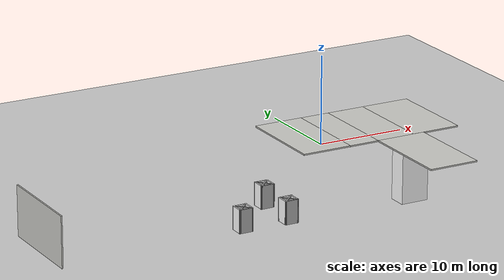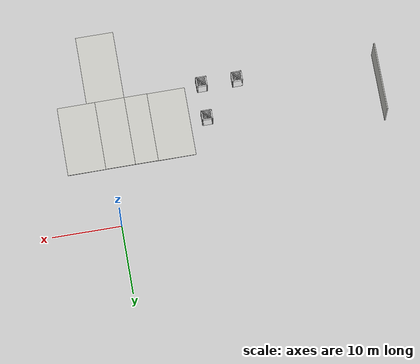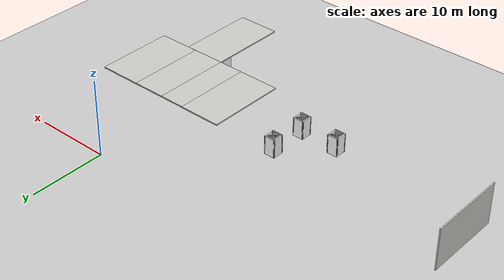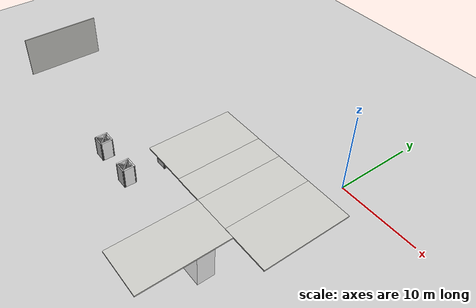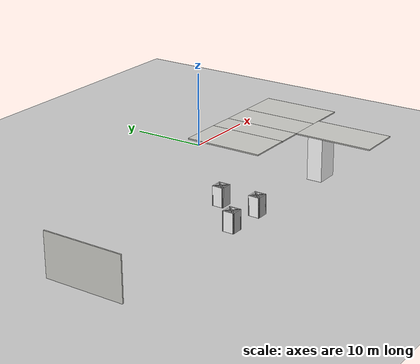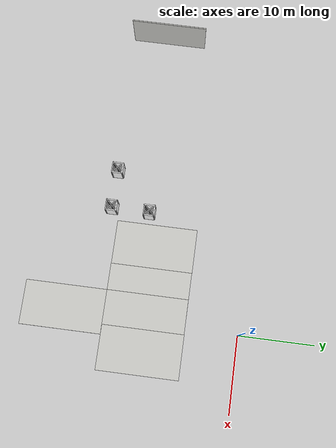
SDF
<sdf version="1.7">
 <world name="default">
  <model name="ground_plane">
   <static>1</static>
   <link name="link">
    <collision name="collision">
     <geometry><plane><normal>0 0 1</normal><size>100 100</size></plane></geometry>
     <surface>
      <contact><collide_bitmask>65535</collide_bitmask></contact>
      <friction><ode><mu>100</mu><mu2>50</mu2></ode></friction>
     </surface>
    </collision>
    <visual name="visual">
     <cast_shadows>0</cast_shadows>
     <geometry><plane><normal>0 0 1</normal><size>100 100</size></plane></geometry>
     <material>
      <script><uri>file://media/materials/scripts/gazebo.material</uri><name>Gazebo/Grey</name></script>
     </material>
    </visual>
   </link>
  </model>
  <model name="Untitled_0_clone_2">
   <link name="Wall_2">
    <pose>-0.3075 -1.8625 0 0 0 -1.5708</pose>
    <inertial>
     <mass>1</mass>
     <inertia><ixx>1</ixx><ixy>0</ixy><ixz>0</ixz><iyy>1</iyy><iyz>0</iyz><izz>1</izz></inertia>
    </inertial>
    <visual name="Wall_2_Visual">
     <pose>0 0 2.7 0 -0 0</pose>
     <geometry><box><size>10 0.15 5.4</size></box></geometry>
     <material>
      <script><uri>file://media/materials/scripts/gazebo.material</uri><name>Gazebo/CeilingTiled</name></script>
      <ambient>1 1 1 1</ambient>
      <shader type="pixel"><normal_map>__default__</normal_map></shader>
      <diffuse>1 1 1 1</diffuse>
      <specular>0 0 0 1</specular>
      <emissive>0 0 0 1</emissive>
     </material>
     <meta><layer>0</layer></meta>
    </visual>
    <collision name="Wall_2_Collision">
     <pose>0 0 2.7 0 -0 0</pose>
     <geometry><box><size>10 0.15 5.4</size></box></geometry>
     <surface>
      <friction>
       <ode><mu>1</mu><mu2>1</mu2><fdir1>0 0 0</fdir1><slip1>0</slip1><slip2>0</slip2></ode>
       <torsional>
        <coefficient>1</coefficient>
        <patch_radius>0</patch_radius>
        <surface_radius>0</surface_radius>
        <use_patch_radius>1</use_patch_radius>
        <ode><slip>0</slip></ode>
       </torsional>
      </friction>
      <bounce><restitution_coefficient>0</restitution_coefficient><threshold>1e+06</threshold></bounce>
      <contact>
       <collide_without_contact>0</collide_without_contact>
       <collide_without_contact_bitmask>1</collide_without_contact_bitmask>
       <collide_bitmask>1</collide_bitmask>
       <ode>
        <soft_cfm>0</soft_cfm>
        <soft_erp>0.2</soft_erp>
        <kp>1e+13</kp>
        <kd>1</kd>
        <max_vel>0.01</max_vel>
        <min_depth>0</min_depth>
       </ode>
       <bullet>
        <split_impulse>1</split_impulse>
        <split_impulse_penetration_threshold>-0.01</split_impulse_penetration_threshold>
        <soft_cfm>0</soft_cfm>
        <soft_erp>0.2</soft_erp>
        <kp>1e+13</kp>
        <kd>1</kd>
       </bullet>
      </contact>
     </surface>
    </collision>
   </link>
   <static>1</static>
   <pose>-39.5182 -12.2186 0 0 -0 0</pose>
  </model>
  <model name="Untitled_1_clone_3_clone_3">
   <link name="Wall_10">
    <pose>4.92197 -3.43197 0 0 -0 1.5708</pose>
    <inertial>
     <mass>1</mass>
     <inertia><ixx>1</ixx><ixy>0</ixy><ixz>0</ixz><iyy>1</iyy><iyz>0</iyz><izz>1</izz></inertia>
    </inertial>
    <visual name="Wall_10_Visual">
     <pose>0 0 1.25 0 -0 0</pose>
     <geometry><box><size>1.5 0.15 2.5</size></box></geometry>
     <material>
      <script><uri>file://media/materials/scripts/gazebo.material</uri><name>Gazebo/CoM</name></script>
      <ambient>1 1 1 1</ambient>
      <shader type="pixel"><normal_map>__default__</normal_map></shader>
      <diffuse>1 1 1 1</diffuse>
      <specular>0 0 0 1</specular>
      <emissive>0 0 0 1</emissive>
     </material>
     <meta><layer>0</layer></meta>
    </visual>
    <collision name="Wall_10_Collision">
     <pose>0 0 1.25 0 -0 0</pose>
     <geometry><box><size>1.5 0.15 2.5</size></box></geometry>
     <surface>
      <friction>
       <ode><mu>1</mu><mu2>1</mu2><fdir1>0 0 0</fdir1><slip1>0</slip1><slip2>0</slip2></ode>
       <torsional>
        <coefficient>1</coefficient>
        <patch_radius>0</patch_radius>
        <surface_radius>0</surface_radius>
        <use_patch_radius>1</use_patch_radius>
        <ode><slip>0</slip></ode>
       </torsional>
      </friction>
      <bounce><restitution_coefficient>0</restitution_coefficient><threshold>1e+06</threshold></bounce>
      <contact>
       <collide_without_contact>0</collide_without_contact>
       <collide_without_contact_bitmask>1</collide_without_contact_bitmask>
       <collide_bitmask>1</collide_bitmask>
       <ode>
        <soft_cfm>0</soft_cfm>
        <soft_erp>0.2</soft_erp>
        <kp>1e+13</kp>
        <kd>1</kd>
        <max_vel>0.01</max_vel>
        <min_depth>0</min_depth>
       </ode>
       <bullet>
        <split_impulse>1</split_impulse>
        <split_impulse_penetration_threshold>-0.01</split_impulse_penetration_threshold>
        <soft_cfm>0</soft_cfm>
        <soft_erp>0.2</soft_erp>
        <kp>1e+13</kp>
        <kd>1</kd>
       </bullet>
      </contact>
     </surface>
    </collision>
   </link>
   <link name="Wall_11">
    <pose>5.59697 -3.43197 0 0 0 -0.785398</pose>
    <visual name="Wall_11_Visual">
     <pose>0 0 1.25 0 -0 0</pose>
     <geometry><box><size>2.05919 0.15 2.5</size></box></geometry>
     <material>
      <script><uri>file://media/materials/scripts/gazebo.material</uri><name>Gazebo/Grey</name></script>
      <ambient>1 1 1 1</ambient>
      <shader type="pixel"/>
     </material>
     <meta><layer>0</layer></meta>
    </visual>
    <collision name="Wall_11_Collision">
     <pose>0 0 1.25 0 -0 0</pose>
     <geometry><box><size>2.05919 0.15 2.5</size></box></geometry>
     <surface>
      <friction>
       <ode><mu>1</mu><mu2>1</mu2><fdir1>0 0 0</fdir1><slip1>0</slip1><slip2>0</slip2></ode>
       <torsional>
        <coefficient>1</coefficient>
        <patch_radius>0</patch_radius>
        <surface_radius>0</surface_radius>
        <use_patch_radius>1</use_patch_radius>
        <ode><slip>0</slip></ode>
       </torsional>
      </friction>
      <bounce><restitution_coefficient>0</restitution_coefficient><threshold>1e+06</threshold></bounce>
      <contact>
       <collide_without_contact>0</collide_without_contact>
       <collide_without_contact_bitmask>1</collide_without_contact_bitmask>
       <collide_bitmask>1</collide_bitmask>
       <ode>
        <soft_cfm>0</soft_cfm>
        <soft_erp>0.2</soft_erp>
        <kp>1e+13</kp>
        <kd>1</kd>
        <max_vel>0.01</max_vel>
        <min_depth>0</min_depth>
       </ode>
       <bullet>
        <split_impulse>1</split_impulse>
        <split_impulse_penetration_threshold>-0.01</split_impulse_penetration_threshold>
        <soft_cfm>0</soft_cfm>
        <soft_erp>0.2</soft_erp>
        <kp>1e+13</kp>
        <kd>1</kd>
       </bullet>
      </contact>
     </surface>
    </collision>
   </link>
   <link name="Wall_13">
    <pose>5.59697 -3.43197 0 0 -0 0.785398</pose>
    <visual name="Wall_13_Visual">
     <pose>0 0 1.25 0 -0 0</pose>
     <geometry><box><size>2.05919 0.15 2.5</size></box></geometry>
     <material>
      <script><uri>file://media/materials/scripts/gazebo.material</uri><name>Gazebo/Grey</name></script>
      <ambient>1 1 1 1</ambient>
      <shader type="pixel"/>
     </material>
     <meta><layer>0</layer></meta>
    </visual>
    <collision name="Wall_13_Collision">
     <pose>0 0 1.25 0 -0 0</pose>
     <geometry><box><size>2.05919 0.15 2.5</size></box></geometry>
     <surface>
      <friction>
       <ode><mu>1</mu><mu2>1</mu2><fdir1>0 0 0</fdir1><slip1>0</slip1><slip2>0</slip2></ode>
       <torsional>
        <coefficient>1</coefficient>
        <patch_radius>0</patch_radius>
        <surface_radius>0</surface_radius>
        <use_patch_radius>1</use_patch_radius>
        <ode><slip>0</slip></ode>
       </torsional>
      </friction>
      <bounce><restitution_coefficient>0</restitution_coefficient><threshold>1e+06</threshold></bounce>
      <contact>
       <collide_without_contact>0</collide_without_contact>
       <collide_without_contact_bitmask>1</collide_without_contact_bitmask>
       <collide_bitmask>1</collide_bitmask>
       <ode>
        <soft_cfm>0</soft_cfm>
        <soft_erp>0.2</soft_erp>
        <kp>1e+13</kp>
        <kd>1</kd>
        <max_vel>0.01</max_vel>
        <min_depth>0</min_depth>
       </ode>
       <bullet>
        <split_impulse>1</split_impulse>
        <split_impulse_penetration_threshold>-0.01</split_impulse_penetration_threshold>
        <soft_cfm>0</soft_cfm>
        <soft_erp>0.2</soft_erp>
        <kp>1e+13</kp>
        <kd>1</kd>
       </bullet>
      </contact>
     </surface>
    </collision>
   </link>
   <link name="Wall_7">
    <pose>5.59697 -2.75697 0 0 -0 0</pose>
    <inertial>
     <mass>1</mass>
     <inertia><ixx>1</ixx><ixy>0</ixy><ixz>0</ixz><iyy>1</iyy><iyz>0</iyz><izz>1</izz></inertia>
    </inertial>
    <visual name="Wall_7_Visual">
     <pose>0 0 1.25 0 -0 0</pose>
     <geometry><box><size>1.5 0.15 2.5</size></box></geometry>
     <material>
      <script><uri>file://media/materials/scripts/gazebo.material</uri><name>Gazebo/CoM</name></script>
      <ambient>1 1 1 1</ambient>
      <shader type="pixel"><normal_map>__default__</normal_map></shader>
      <diffuse>1 1 1 1</diffuse>
      <specular>0 0 0 1</specular>
      <emissive>0 0 0 1</emissive>
     </material>
     <meta><layer>0</layer></meta>
    </visual>
    <collision name="Wall_7_Collision">
     <pose>0 0 1.25 0 -0 0</pose>
     <geometry><box><size>1.5 0.15 2.5</size></box></geometry>
     <surface>
      <friction>
       <ode><mu>1</mu><mu2>1</mu2><fdir1>0 0 0</fdir1><slip1>0</slip1><slip2>0</slip2></ode>
       <torsional>
        <coefficient>1</coefficient>
        <patch_radius>0</patch_radius>
        <surface_radius>0</surface_radius>
        <use_patch_radius>1</use_patch_radius>
        <ode><slip>0</slip></ode>
       </torsional>
      </friction>
      <bounce><restitution_coefficient>0</restitution_coefficient><threshold>1e+06</threshold></bounce>
      <contact>
       <collide_without_contact>0</collide_without_contact>
       <collide_without_contact_bitmask>1</collide_without_contact_bitmask>
       <collide_bitmask>1</collide_bitmask>
       <ode>
        <soft_cfm>0</soft_cfm>
        <soft_erp>0.2</soft_erp>
        <kp>1e+13</kp>
        <kd>1</kd>
        <max_vel>0.01</max_vel>
        <min_depth>0</min_depth>
       </ode>
       <bullet>
        <split_impulse>1</split_impulse>
        <split_impulse_penetration_threshold>-0.01</split_impulse_penetration_threshold>
        <soft_cfm>0</soft_cfm>
        <soft_erp>0.2</soft_erp>
        <kp>1e+13</kp>
        <kd>1</kd>
       </bullet>
      </contact>
     </surface>
    </collision>
   </link>
   <link name="Wall_8">
    <pose>6.27197 -3.43197 0 0 0 -1.5708</pose>
    <inertial>
     <mass>1</mass>
     <inertia><ixx>1</ixx><ixy>0</ixy><ixz>0</ixz><iyy>1</iyy><iyz>0</iyz><izz>1</izz></inertia>
    </inertial>
    <visual name="Wall_8_Visual">
     <pose>0 0 1.25 0 -0 0</pose>
     <geometry><box><size>1.5 0.15 2.5</size></box></geometry>
     <material>
      <script><uri>file://media/materials/scripts/gazebo.material</uri><name>Gazebo/CoM</name></script>
      <ambient>1 1 1 1</ambient>
      <shader type="pixel"><normal_map>__default__</normal_map></shader>
      <diffuse>1 1 1 1</diffuse>
      <specular>0 0 0 1</specular>
      <emissive>0 0 0 1</emissive>
     </material>
     <meta><layer>0</layer></meta>
    </visual>
    <collision name="Wall_8_Collision">
     <pose>0 0 1.25 0 -0 0</pose>
     <geometry><box><size>1.5 0.15 2.5</size></box></geometry>
     <surface>
      <friction>
       <ode><mu>1</mu><mu2>1</mu2><fdir1>0 0 0</fdir1><slip1>0</slip1><slip2>0</slip2></ode>
       <torsional>
        <coefficient>1</coefficient>
        <patch_radius>0</patch_radius>
        <surface_radius>0</surface_radius>
        <use_patch_radius>1</use_patch_radius>
        <ode><slip>0</slip></ode>
       </torsional>
      </friction>
      <bounce><restitution_coefficient>0</restitution_coefficient><threshold>1e+06</threshold></bounce>
      <contact>
       <collide_without_contact>0</collide_without_contact>
       <collide_without_contact_bitmask>1</collide_without_contact_bitmask>
       <collide_bitmask>1</collide_bitmask>
       <ode>
        <soft_cfm>0</soft_cfm>
        <soft_erp>0.2</soft_erp>
        <kp>1e+13</kp>
        <kd>1</kd>
        <max_vel>0.01</max_vel>
        <min_depth>0</min_depth>
       </ode>
       <bullet>
        <split_impulse>1</split_impulse>
        <split_impulse_penetration_threshold>-0.01</split_impulse_penetration_threshold>
        <soft_cfm>0</soft_cfm>
        <soft_erp>0.2</soft_erp>
        <kp>1e+13</kp>
        <kd>1</kd>
       </bullet>
      </contact>
     </surface>
    </collision>
   </link>
   <link name="Wall_9">
    <pose>5.59697 -4.10697 0 0 -0 3.14159</pose>
    <inertial>
     <mass>1</mass>
     <inertia><ixx>1</ixx><ixy>0</ixy><ixz>0</ixz><iyy>1</iyy><iyz>0</iyz><izz>1</izz></inertia>
    </inertial>
    <visual name="Wall_9_Visual">
     <pose>0 0 1.25 0 -0 0</pose>
     <geometry><box><size>1.5 0.15 2.5</size></box></geometry>
     <material>
      <script><uri>file://media/materials/scripts/gazebo.material</uri><name>Gazebo/CoM</name></script>
      <ambient>1 1 1 1</ambient>
      <shader type="pixel"><normal_map>__default__</normal_map></shader>
      <diffuse>0.7 0.7 0.7 1</diffuse>
      <specular>0.01 0.01 0.01 1</specular>
      <emissive>0 0 0 1</emissive>
     </material>
     <meta><layer>0</layer></meta>
    </visual>
    <collision name="Wall_9_Collision">
     <pose>0 0 1.25 0 -0 0</pose>
     <geometry><box><size>1.5 0.15 2.5</size></box></geometry>
     <surface>
      <friction>
       <ode><mu>1</mu><mu2>1</mu2><fdir1>0 0 0</fdir1><slip1>0</slip1><slip2>0</slip2></ode>
       <torsional>
        <coefficient>1</coefficient>
        <patch_radius>0</patch_radius>
        <surface_radius>0</surface_radius>
        <use_patch_radius>1</use_patch_radius>
        <ode><slip>0</slip></ode>
       </torsional>
      </friction>
      <bounce><restitution_coefficient>0</restitution_coefficient><threshold>1e+06</threshold></bounce>
      <contact>
       <collide_without_contact>0</collide_without_contact>
       <collide_without_contact_bitmask>1</collide_without_contact_bitmask>
       <collide_bitmask>1</collide_bitmask>
       <ode>
        <soft_cfm>0</soft_cfm>
        <soft_erp>0.2</soft_erp>
        <kp>1e+13</kp>
        <kd>1</kd>
        <max_vel>0.01</max_vel>
        <min_depth>0</min_depth>
       </ode>
       <bullet>
        <split_impulse>1</split_impulse>
        <split_impulse_penetration_threshold>-0.01</split_impulse_penetration_threshold>
        <soft_cfm>0</soft_cfm>
        <soft_erp>0.2</soft_erp>
        <kp>1e+13</kp>
        <kd>1</kd>
       </bullet>
      </contact>
     </surface>
    </collision>
   </link>
   <static>1</static>
   <pose>-20.2613 -15.1137 0 0 -0 0</pose>
  </model>
  <model name="Untitled_1_clone_3_clone_4">
   <link name="Wall_10">
    <pose>4.92197 -3.43197 0 0 -0 1.5708</pose>
    <inertial>
     <mass>1</mass>
     <inertia><ixx>1</ixx><ixy>0</ixy><ixz>0</ixz><iyy>1</iyy><iyz>0</iyz><izz>1</izz></inertia>
    </inertial>
    <visual name="Wall_10_Visual">
     <pose>0 0 1.25 0 -0 0</pose>
     <geometry><box><size>1.5 0.15 2.5</size></box></geometry>
     <material>
      <script><uri>file://media/materials/scripts/gazebo.material</uri><name>Gazebo/CoM</name></script>
      <ambient>1 1 1 1</ambient>
      <shader type="pixel"><normal_map>__default__</normal_map></shader>
      <diffuse>1 1 1 1</diffuse>
      <specular>0 0 0 1</specular>
      <emissive>0 0 0 1</emissive>
     </material>
     <meta><layer>0</layer></meta>
    </visual>
    <collision name="Wall_10_Collision">
     <pose>0 0 1.25 0 -0 0</pose>
     <geometry><box><size>1.5 0.15 2.5</size></box></geometry>
     <surface>
      <friction>
       <ode><mu>1</mu><mu2>1</mu2><fdir1>0 0 0</fdir1><slip1>0</slip1><slip2>0</slip2></ode>
       <torsional>
        <coefficient>1</coefficient>
        <patch_radius>0</patch_radius>
        <surface_radius>0</surface_radius>
        <use_patch_radius>1</use_patch_radius>
        <ode><slip>0</slip></ode>
       </torsional>
      </friction>
      <bounce><restitution_coefficient>0</restitution_coefficient><threshold>1e+06</threshold></bounce>
      <contact>
       <collide_without_contact>0</collide_without_contact>
       <collide_without_contact_bitmask>1</collide_without_contact_bitmask>
       <collide_bitmask>1</collide_bitmask>
       <ode>
        <soft_cfm>0</soft_cfm>
        <soft_erp>0.2</soft_erp>
        <kp>1e+13</kp>
        <kd>1</kd>
        <max_vel>0.01</max_vel>
        <min_depth>0</min_depth>
       </ode>
       <bullet>
        <split_impulse>1</split_impulse>
        <split_impulse_penetration_threshold>-0.01</split_impulse_penetration_threshold>
        <soft_cfm>0</soft_cfm>
        <soft_erp>0.2</soft_erp>
        <kp>1e+13</kp>
        <kd>1</kd>
       </bullet>
      </contact>
     </surface>
    </collision>
   </link>
   <link name="Wall_11">
    <pose>5.59697 -3.43197 0 0 0 -0.785398</pose>
    <visual name="Wall_11_Visual">
     <pose>0 0 1.25 0 -0 0</pose>
     <geometry><box><size>2.05919 0.15 2.5</size></box></geometry>
     <material>
      <script><uri>file://media/materials/scripts/gazebo.material</uri><name>Gazebo/Grey</name></script>
      <ambient>1 1 1 1</ambient>
      <shader type="pixel"/>
     </material>
     <meta><layer>0</layer></meta>
    </visual>
    <collision name="Wall_11_Collision">
     <pose>0 0 1.25 0 -0 0</pose>
     <geometry><box><size>2.05919 0.15 2.5</size></box></geometry>
     <surface>
      <friction>
       <ode><mu>1</mu><mu2>1</mu2><fdir1>0 0 0</fdir1><slip1>0</slip1><slip2>0</slip2></ode>
       <torsional>
        <coefficient>1</coefficient>
        <patch_radius>0</patch_radius>
        <surface_radius>0</surface_radius>
        <use_patch_radius>1</use_patch_radius>
        <ode><slip>0</slip></ode>
       </torsional>
      </friction>
      <bounce><restitution_coefficient>0</restitution_coefficient><threshold>1e+06</threshold></bounce>
      <contact>
       <collide_without_contact>0</collide_without_contact>
       <collide_without_contact_bitmask>1</collide_without_contact_bitmask>
       <collide_bitmask>1</collide_bitmask>
       <ode>
        <soft_cfm>0</soft_cfm>
        <soft_erp>0.2</soft_erp>
        <kp>1e+13</kp>
        <kd>1</kd>
        <max_vel>0.01</max_vel>
        <min_depth>0</min_depth>
       </ode>
       <bullet>
        <split_impulse>1</split_impulse>
        <split_impulse_penetration_threshold>-0.01</split_impulse_penetration_threshold>
        <soft_cfm>0</soft_cfm>
        <soft_erp>0.2</soft_erp>
        <kp>1e+13</kp>
        <kd>1</kd>
       </bullet>
      </contact>
     </surface>
    </collision>
   </link>
   <link name="Wall_13">
    <pose>5.59697 -3.43197 0 0 -0 0.785398</pose>
    <visual name="Wall_13_Visual">
     <pose>0 0 1.25 0 -0 0</pose>
     <geometry><box><size>2.05919 0.15 2.5</size></box></geometry>
     <material>
      <script><uri>file://media/materials/scripts/gazebo.material</uri><name>Gazebo/Grey</name></script>
      <ambient>1 1 1 1</ambient>
      <shader type="pixel"/>
     </material>
     <meta><layer>0</layer></meta>
    </visual>
    <collision name="Wall_13_Collision">
     <pose>0 0 1.25 0 -0 0</pose>
     <geometry><box><size>2.05919 0.15 2.5</size></box></geometry>
     <surface>
      <friction>
       <ode><mu>1</mu><mu2>1</mu2><fdir1>0 0 0</fdir1><slip1>0</slip1><slip2>0</slip2></ode>
       <torsional>
        <coefficient>1</coefficient>
        <patch_radius>0</patch_radius>
        <surface_radius>0</surface_radius>
        <use_patch_radius>1</use_patch_radius>
        <ode><slip>0</slip></ode>
       </torsional>
      </friction>
      <bounce><restitution_coefficient>0</restitution_coefficient><threshold>1e+06</threshold></bounce>
      <contact>
       <collide_without_contact>0</collide_without_contact>
       <collide_without_contact_bitmask>1</collide_without_contact_bitmask>
       <collide_bitmask>1</collide_bitmask>
       <ode>
        <soft_cfm>0</soft_cfm>
        <soft_erp>0.2</soft_erp>
        <kp>1e+13</kp>
        <kd>1</kd>
        <max_vel>0.01</max_vel>
        <min_depth>0</min_depth>
       </ode>
       <bullet>
        <split_impulse>1</split_impulse>
        <split_impulse_penetration_threshold>-0.01</split_impulse_penetration_threshold>
        <soft_cfm>0</soft_cfm>
        <soft_erp>0.2</soft_erp>
        <kp>1e+13</kp>
        <kd>1</kd>
       </bullet>
      </contact>
     </surface>
    </collision>
   </link>
   <link name="Wall_7">
    <pose>5.59697 -2.75697 0 0 -0 0</pose>
    <inertial>
     <mass>1</mass>
     <inertia><ixx>1</ixx><ixy>0</ixy><ixz>0</ixz><iyy>1</iyy><iyz>0</iyz><izz>1</izz></inertia>
    </inertial>
    <visual name="Wall_7_Visual">
     <pose>0 0 1.25 0 -0 0</pose>
     <geometry><box><size>1.5 0.15 2.5</size></box></geometry>
     <material>
      <script><uri>file://media/materials/scripts/gazebo.material</uri><name>Gazebo/CoM</name></script>
      <ambient>1 1 1 1</ambient>
      <shader type="pixel"><normal_map>__default__</normal_map></shader>
      <diffuse>1 1 1 1</diffuse>
      <specular>0 0 0 1</specular>
      <emissive>0 0 0 1</emissive>
     </material>
     <meta><layer>0</layer></meta>
    </visual>
    <collision name="Wall_7_Collision">
     <pose>0 0 1.25 0 -0 0</pose>
     <geometry><box><size>1.5 0.15 2.5</size></box></geometry>
     <surface>
      <friction>
       <ode><mu>1</mu><mu2>1</mu2><fdir1>0 0 0</fdir1><slip1>0</slip1><slip2>0</slip2></ode>
       <torsional>
        <coefficient>1</coefficient>
        <patch_radius>0</patch_radius>
        <surface_radius>0</surface_radius>
        <use_patch_radius>1</use_patch_radius>
        <ode><slip>0</slip></ode>
       </torsional>
      </friction>
      <bounce><restitution_coefficient>0</restitution_coefficient><threshold>1e+06</threshold></bounce>
      <contact>
       <collide_without_contact>0</collide_without_contact>
       <collide_without_contact_bitmask>1</collide_without_contact_bitmask>
       <collide_bitmask>1</collide_bitmask>
       <ode>
        <soft_cfm>0</soft_cfm>
        <soft_erp>0.2</soft_erp>
        <kp>1e+13</kp>
        <kd>1</kd>
        <max_vel>0.01</max_vel>
        <min_depth>0</min_depth>
       </ode>
       <bullet>
        <split_impulse>1</split_impulse>
        <split_impulse_penetration_threshold>-0.01</split_impulse_penetration_threshold>
        <soft_cfm>0</soft_cfm>
        <soft_erp>0.2</soft_erp>
        <kp>1e+13</kp>
        <kd>1</kd>
       </bullet>
      </contact>
     </surface>
    </collision>
   </link>
   <link name="Wall_8">
    <pose>6.27197 -3.43197 0 0 0 -1.5708</pose>
    <inertial>
     <mass>1</mass>
     <inertia><ixx>1</ixx><ixy>0</ixy><ixz>0</ixz><iyy>1</iyy><iyz>0</iyz><izz>1</izz></inertia>
    </inertial>
    <visual name="Wall_8_Visual">
     <pose>0 0 1.25 0 -0 0</pose>
     <geometry><box><size>1.5 0.15 2.5</size></box></geometry>
     <material>
      <script><uri>file://media/materials/scripts/gazebo.material</uri><name>Gazebo/CoM</name></script>
      <ambient>1 1 1 1</ambient>
      <shader type="pixel"><normal_map>__default__</normal_map></shader>
      <diffuse>1 1 1 1</diffuse>
      <specular>0 0 0 1</specular>
      <emissive>0 0 0 1</emissive>
     </material>
     <meta><layer>0</layer></meta>
    </visual>
    <collision name="Wall_8_Collision">
     <pose>0 0 1.25 0 -0 0</pose>
     <geometry><box><size>1.5 0.15 2.5</size></box></geometry>
     <surface>
      <friction>
       <ode><mu>1</mu><mu2>1</mu2><fdir1>0 0 0</fdir1><slip1>0</slip1><slip2>0</slip2></ode>
       <torsional>
        <coefficient>1</coefficient>
        <patch_radius>0</patch_radius>
        <surface_radius>0</surface_radius>
        <use_patch_radius>1</use_patch_radius>
        <ode><slip>0</slip></ode>
       </torsional>
      </friction>
      <bounce><restitution_coefficient>0</restitution_coefficient><threshold>1e+06</threshold></bounce>
      <contact>
       <collide_without_contact>0</collide_without_contact>
       <collide_without_contact_bitmask>1</collide_without_contact_bitmask>
       <collide_bitmask>1</collide_bitmask>
       <ode>
        <soft_cfm>0</soft_cfm>
        <soft_erp>0.2</soft_erp>
        <kp>1e+13</kp>
        <kd>1</kd>
        <max_vel>0.01</max_vel>
        <min_depth>0</min_depth>
       </ode>
       <bullet>
        <split_impulse>1</split_impulse>
        <split_impulse_penetration_threshold>-0.01</split_impulse_penetration_threshold>
        <soft_cfm>0</soft_cfm>
        <soft_erp>0.2</soft_erp>
        <kp>1e+13</kp>
        <kd>1</kd>
       </bullet>
      </contact>
     </surface>
    </collision>
   </link>
   <link name="Wall_9">
    <pose>5.59697 -4.10697 0 0 -0 3.14159</pose>
    <inertial>
     <mass>1</mass>
     <inertia><ixx>1</ixx><ixy>0</ixy><ixz>0</ixz><iyy>1</iyy><iyz>0</iyz><izz>1</izz></inertia>
    </inertial>
    <visual name="Wall_9_Visual">
     <pose>0 0 1.25 0 -0 0</pose>
     <geometry><box><size>1.5 0.15 2.5</size></box></geometry>
     <material>
      <script><uri>file://media/materials/scripts/gazebo.material</uri><name>Gazebo/CoM</name></script>
      <ambient>1 1 1 1</ambient>
      <shader type="pixel"><normal_map>__default__</normal_map></shader>
      <diffuse>0.7 0.7 0.7 1</diffuse>
      <specular>0.01 0.01 0.01 1</specular>
      <emissive>0 0 0 1</emissive>
     </material>
     <meta><layer>0</layer></meta>
    </visual>
    <collision name="Wall_9_Collision">
     <pose>0 0 1.25 0 -0 0</pose>
     <geometry><box><size>1.5 0.15 2.5</size></box></geometry>
     <surface>
      <friction>
       <ode><mu>1</mu><mu2>1</mu2><fdir1>0 0 0</fdir1><slip1>0</slip1><slip2>0</slip2></ode>
       <torsional>
        <coefficient>1</coefficient>
        <patch_radius>0</patch_radius>
        <surface_radius>0</surface_radius>
        <use_patch_radius>1</use_patch_radius>
        <ode><slip>0</slip></ode>
       </torsional>
      </friction>
      <bounce><restitution_coefficient>0</restitution_coefficient><threshold>1e+06</threshold></bounce>
      <contact>
       <collide_without_contact>0</collide_without_contact>
       <collide_without_contact_bitmask>1</collide_without_contact_bitmask>
       <collide_bitmask>1</collide_bitmask>
       <ode>
        <soft_cfm>0</soft_cfm>
        <soft_erp>0.2</soft_erp>
        <kp>1e+13</kp>
        <kd>1</kd>
        <max_vel>0.01</max_vel>
        <min_depth>0</min_depth>
       </ode>
       <bullet>
        <split_impulse>1</split_impulse>
        <split_impulse_penetration_threshold>-0.01</split_impulse_penetration_threshold>
        <soft_cfm>0</soft_cfm>
        <soft_erp>0.2</soft_erp>
        <kp>1e+13</kp>
        <kd>1</kd>
       </bullet>
      </contact>
     </surface>
    </collision>
   </link>
   <static>1</static>
   <pose>-25.4061 -15.0419 0 0 -0 0</pose>
  </model>
  <model name="Untitled_1_clone_3_clone_5">
   <link name="Wall_10">
    <pose>4.92197 -3.43197 0 0 -0 1.5708</pose>
    <inertial>
     <mass>1</mass>
     <inertia><ixx>1</ixx><ixy>0</ixy><ixz>0</ixz><iyy>1</iyy><iyz>0</iyz><izz>1</izz></inertia>
    </inertial>
    <visual name="Wall_10_Visual">
     <pose>0 0 1.25 0 -0 0</pose>
     <geometry><box><size>1.5 0.15 2.5</size></box></geometry>
     <material>
      <script><uri>file://media/materials/scripts/gazebo.material</uri><name>Gazebo/CoM</name></script>
      <ambient>1 1 1 1</ambient>
      <shader type="pixel"><normal_map>__default__</normal_map></shader>
      <diffuse>1 1 1 1</diffuse>
      <specular>0 0 0 1</specular>
      <emissive>0 0 0 1</emissive>
     </material>
     <meta><layer>0</layer></meta>
    </visual>
    <collision name="Wall_10_Collision">
     <pose>0 0 1.25 0 -0 0</pose>
     <geometry><box><size>1.5 0.15 2.5</size></box></geometry>
     <surface>
      <friction>
       <ode><mu>1</mu><mu2>1</mu2><fdir1>0 0 0</fdir1><slip1>0</slip1><slip2>0</slip2></ode>
       <torsional>
        <coefficient>1</coefficient>
        <patch_radius>0</patch_radius>
        <surface_radius>0</surface_radius>
        <use_patch_radius>1</use_patch_radius>
        <ode><slip>0</slip></ode>
       </torsional>
      </friction>
      <bounce><restitution_coefficient>0</restitution_coefficient><threshold>1e+06</threshold></bounce>
      <contact>
       <collide_without_contact>0</collide_without_contact>
       <collide_without_contact_bitmask>1</collide_without_contact_bitmask>
       <collide_bitmask>1</collide_bitmask>
       <ode>
        <soft_cfm>0</soft_cfm>
        <soft_erp>0.2</soft_erp>
        <kp>1e+13</kp>
        <kd>1</kd>
        <max_vel>0.01</max_vel>
        <min_depth>0</min_depth>
       </ode>
       <bullet>
        <split_impulse>1</split_impulse>
        <split_impulse_penetration_threshold>-0.01</split_impulse_penetration_threshold>
        <soft_cfm>0</soft_cfm>
        <soft_erp>0.2</soft_erp>
        <kp>1e+13</kp>
        <kd>1</kd>
       </bullet>
      </contact>
     </surface>
    </collision>
   </link>
   <link name="Wall_11">
    <pose>5.59697 -3.43197 0 0 0 -0.785398</pose>
    <visual name="Wall_11_Visual">
     <pose>0 0 1.25 0 -0 0</pose>
     <geometry><box><size>2.05919 0.15 2.5</size></box></geometry>
     <material>
      <script><uri>file://media/materials/scripts/gazebo.material</uri><name>Gazebo/Grey</name></script>
      <ambient>1 1 1 1</ambient>
      <shader type="pixel"/>
     </material>
     <meta><layer>0</layer></meta>
    </visual>
    <collision name="Wall_11_Collision">
     <pose>0 0 1.25 0 -0 0</pose>
     <geometry><box><size>2.05919 0.15 2.5</size></box></geometry>
     <surface>
      <friction>
       <ode><mu>1</mu><mu2>1</mu2><fdir1>0 0 0</fdir1><slip1>0</slip1><slip2>0</slip2></ode>
       <torsional>
        <coefficient>1</coefficient>
        <patch_radius>0</patch_radius>
        <surface_radius>0</surface_radius>
        <use_patch_radius>1</use_patch_radius>
        <ode><slip>0</slip></ode>
       </torsional>
      </friction>
      <bounce><restitution_coefficient>0</restitution_coefficient><threshold>1e+06</threshold></bounce>
      <contact>
       <collide_without_contact>0</collide_without_contact>
       <collide_without_contact_bitmask>1</collide_without_contact_bitmask>
       <collide_bitmask>1</collide_bitmask>
       <ode>
        <soft_cfm>0</soft_cfm>
        <soft_erp>0.2</soft_erp>
        <kp>1e+13</kp>
        <kd>1</kd>
        <max_vel>0.01</max_vel>
        <min_depth>0</min_depth>
       </ode>
       <bullet>
        <split_impulse>1</split_impulse>
        <split_impulse_penetration_threshold>-0.01</split_impulse_penetration_threshold>
        <soft_cfm>0</soft_cfm>
        <soft_erp>0.2</soft_erp>
        <kp>1e+13</kp>
        <kd>1</kd>
       </bullet>
      </contact>
     </surface>
    </collision>
   </link>
   <link name="Wall_13">
    <pose>5.59697 -3.43197 0 0 -0 0.785398</pose>
    <visual name="Wall_13_Visual">
     <pose>0 0 1.25 0 -0 0</pose>
     <geometry><box><size>2.05919 0.15 2.5</size></box></geometry>
     <material>
      <script><uri>file://media/materials/scripts/gazebo.material</uri><name>Gazebo/Grey</name></script>
      <ambient>1 1 1 1</ambient>
      <shader type="pixel"/>
     </material>
     <meta><layer>0</layer></meta>
    </visual>
    <collision name="Wall_13_Collision">
     <pose>0 0 1.25 0 -0 0</pose>
     <geometry><box><size>2.05919 0.15 2.5</size></box></geometry>
     <surface>
      <friction>
       <ode><mu>1</mu><mu2>1</mu2><fdir1>0 0 0</fdir1><slip1>0</slip1><slip2>0</slip2></ode>
       <torsional>
        <coefficient>1</coefficient>
        <patch_radius>0</patch_radius>
        <surface_radius>0</surface_radius>
        <use_patch_radius>1</use_patch_radius>
        <ode><slip>0</slip></ode>
       </torsional>
      </friction>
      <bounce><restitution_coefficient>0</restitution_coefficient><threshold>1e+06</threshold></bounce>
      <contact>
       <collide_without_contact>0</collide_without_contact>
       <collide_without_contact_bitmask>1</collide_without_contact_bitmask>
       <collide_bitmask>1</collide_bitmask>
       <ode>
        <soft_cfm>0</soft_cfm>
        <soft_erp>0.2</soft_erp>
        <kp>1e+13</kp>
        <kd>1</kd>
        <max_vel>0.01</max_vel>
        <min_depth>0</min_depth>
       </ode>
       <bullet>
        <split_impulse>1</split_impulse>
        <split_impulse_penetration_threshold>-0.01</split_impulse_penetration_threshold>
        <soft_cfm>0</soft_cfm>
        <soft_erp>0.2</soft_erp>
        <kp>1e+13</kp>
        <kd>1</kd>
       </bullet>
      </contact>
     </surface>
    </collision>
   </link>
   <link name="Wall_7">
    <pose>5.59697 -2.75697 0 0 -0 0</pose>
    <inertial>
     <mass>1</mass>
     <inertia><ixx>1</ixx><ixy>0</ixy><ixz>0</ixz><iyy>1</iyy><iyz>0</iyz><izz>1</izz></inertia>
    </inertial>
    <visual name="Wall_7_Visual">
     <pose>0 0 1.25 0 -0 0</pose>
     <geometry><box><size>1.5 0.15 2.5</size></box></geometry>
     <material>
      <script><uri>file://media/materials/scripts/gazebo.material</uri><name>Gazebo/CoM</name></script>
      <ambient>1 1 1 1</ambient>
      <shader type="pixel"><normal_map>__default__</normal_map></shader>
      <diffuse>1 1 1 1</diffuse>
      <specular>0 0 0 1</specular>
      <emissive>0 0 0 1</emissive>
     </material>
     <meta><layer>0</layer></meta>
    </visual>
    <collision name="Wall_7_Collision">
     <pose>0 0 1.25 0 -0 0</pose>
     <geometry><box><size>1.5 0.15 2.5</size></box></geometry>
     <surface>
      <friction>
       <ode><mu>1</mu><mu2>1</mu2><fdir1>0 0 0</fdir1><slip1>0</slip1><slip2>0</slip2></ode>
       <torsional>
        <coefficient>1</coefficient>
        <patch_radius>0</patch_radius>
        <surface_radius>0</surface_radius>
        <use_patch_radius>1</use_patch_radius>
        <ode><slip>0</slip></ode>
       </torsional>
      </friction>
      <bounce><restitution_coefficient>0</restitution_coefficient><threshold>1e+06</threshold></bounce>
      <contact>
       <collide_without_contact>0</collide_without_contact>
       <collide_without_contact_bitmask>1</collide_without_contact_bitmask>
       <collide_bitmask>1</collide_bitmask>
       <ode>
        <soft_cfm>0</soft_cfm>
        <soft_erp>0.2</soft_erp>
        <kp>1e+13</kp>
        <kd>1</kd>
        <max_vel>0.01</max_vel>
        <min_depth>0</min_depth>
       </ode>
       <bullet>
        <split_impulse>1</split_impulse>
        <split_impulse_penetration_threshold>-0.01</split_impulse_penetration_threshold>
        <soft_cfm>0</soft_cfm>
        <soft_erp>0.2</soft_erp>
        <kp>1e+13</kp>
        <kd>1</kd>
       </bullet>
      </contact>
     </surface>
    </collision>
   </link>
   <link name="Wall_8">
    <pose>6.27197 -3.43197 0 0 0 -1.5708</pose>
    <inertial>
     <mass>1</mass>
     <inertia><ixx>1</ixx><ixy>0</ixy><ixz>0</ixz><iyy>1</iyy><iyz>0</iyz><izz>1</izz></inertia>
    </inertial>
    <visual name="Wall_8_Visual">
     <pose>0 0 1.25 0 -0 0</pose>
     <geometry><box><size>1.5 0.15 2.5</size></box></geometry>
     <material>
      <script><uri>file://media/materials/scripts/gazebo.material</uri><name>Gazebo/CoM</name></script>
      <ambient>1 1 1 1</ambient>
      <shader type="pixel"><normal_map>__default__</normal_map></shader>
      <diffuse>1 1 1 1</diffuse>
      <specular>0 0 0 1</specular>
      <emissive>0 0 0 1</emissive>
     </material>
     <meta><layer>0</layer></meta>
    </visual>
    <collision name="Wall_8_Collision">
     <pose>0 0 1.25 0 -0 0</pose>
     <geometry><box><size>1.5 0.15 2.5</size></box></geometry>
     <surface>
      <friction>
       <ode><mu>1</mu><mu2>1</mu2><fdir1>0 0 0</fdir1><slip1>0</slip1><slip2>0</slip2></ode>
       <torsional>
        <coefficient>1</coefficient>
        <patch_radius>0</patch_radius>
        <surface_radius>0</surface_radius>
        <use_patch_radius>1</use_patch_radius>
        <ode><slip>0</slip></ode>
       </torsional>
      </friction>
      <bounce><restitution_coefficient>0</restitution_coefficient><threshold>1e+06</threshold></bounce>
      <contact>
       <collide_without_contact>0</collide_without_contact>
       <collide_without_contact_bitmask>1</collide_without_contact_bitmask>
       <collide_bitmask>1</collide_bitmask>
       <ode>
        <soft_cfm>0</soft_cfm>
        <soft_erp>0.2</soft_erp>
        <kp>1e+13</kp>
        <kd>1</kd>
        <max_vel>0.01</max_vel>
        <min_depth>0</min_depth>
       </ode>
       <bullet>
        <split_impulse>1</split_impulse>
        <split_impulse_penetration_threshold>-0.01</split_impulse_penetration_threshold>
        <soft_cfm>0</soft_cfm>
        <soft_erp>0.2</soft_erp>
        <kp>1e+13</kp>
        <kd>1</kd>
       </bullet>
      </contact>
     </surface>
    </collision>
   </link>
   <link name="Wall_9">
    <pose>5.59697 -4.10697 0 0 -0 3.14159</pose>
    <inertial>
     <mass>1</mass>
     <inertia><ixx>1</ixx><ixy>0</ixy><ixz>0</ixz><iyy>1</iyy><iyz>0</iyz><izz>1</izz></inertia>
    </inertial>
    <visual name="Wall_9_Visual">
     <pose>0 0 1.25 0 -0 0</pose>
     <geometry><box><size>1.5 0.15 2.5</size></box></geometry>
     <material>
      <script><uri>file://media/materials/scripts/gazebo.material</uri><name>Gazebo/CoM</name></script>
      <ambient>1 1 1 1</ambient>
      <shader type="pixel"><normal_map>__default__</normal_map></shader>
      <diffuse>0.7 0.7 0.7 1</diffuse>
      <specular>0.01 0.01 0.01 1</specular>
      <emissive>0 0 0 1</emissive>
     </material>
     <meta><layer>0</layer></meta>
    </visual>
    <collision name="Wall_9_Collision">
     <pose>0 0 1.25 0 -0 0</pose>
     <geometry><box><size>1.5 0.15 2.5</size></box></geometry>
     <surface>
      <friction>
       <ode><mu>1</mu><mu2>1</mu2><fdir1>0 0 0</fdir1><slip1>0</slip1><slip2>0</slip2></ode>
       <torsional>
        <coefficient>1</coefficient>
        <patch_radius>0</patch_radius>
        <surface_radius>0</surface_radius>
        <use_patch_radius>1</use_patch_radius>
        <ode><slip>0</slip></ode>
       </torsional>
      </friction>
      <bounce><restitution_coefficient>0</restitution_coefficient><threshold>1e+06</threshold></bounce>
      <contact>
       <collide_without_contact>0</collide_without_contact>
       <collide_without_contact_bitmask>1</collide_without_contact_bitmask>
       <collide_bitmask>1</collide_bitmask>
       <ode>
        <soft_cfm>0</soft_cfm>
        <soft_erp>0.2</soft_erp>
        <kp>1e+13</kp>
        <kd>1</kd>
        <max_vel>0.01</max_vel>
        <min_depth>0</min_depth>
       </ode>
       <bullet>
        <split_impulse>1</split_impulse>
        <split_impulse_penetration_threshold>-0.01</split_impulse_penetration_threshold>
        <soft_cfm>0</soft_cfm>
        <soft_erp>0.2</soft_erp>
        <kp>1e+13</kp>
        <kd>1</kd>
       </bullet>
      </contact>
     </surface>
    </collision>
   </link>
   <static>1</static>
   <pose>-20.1795 -10.0607 0 0 -0 0</pose>
  </model>
  <model name="Untitled_clone_clone_0_clone_clone_0_clone_0_clone_0_clone_0_clone_0_clone_0">
   <link name="Wall_0">
    <pose>-0.877501 -4.2975 0 0 -0 0</pose>
    <inertial>
     <mass>1</mass>
     <inertia><ixx>1</ixx><ixy>0</ixy><ixz>0</ixz><iyy>1</iyy><iyz>0</iyz><izz>1</izz></inertia>
    </inertial>
    <visual name="Wall_0_Visual">
     <pose>0 0 3 0 -0 0</pose>
     <geometry><box><size>3 2 6</size></box></geometry>
     <material>
      <script><uri>file://media/materials/scripts/gazebo.material</uri><name>Gazebo/CoM</name></script>
      <ambient>1 1 1 1</ambient>
      <shader type="pixel"><normal_map>__default__</normal_map></shader>
      <diffuse>1 1 1 1</diffuse>
      <specular>0.2 0.2 0.2 1</specular>
      <emissive>0 0 0 1</emissive>
     </material>
     <meta><layer>0</layer></meta>
    </visual>
    <collision name="Wall_0_Collision">
     <pose>0 0 3 0 -0 0</pose>
     <geometry><box><size>3 2 6</size></box></geometry>
     <surface>
      <friction>
       <ode><mu>1</mu><mu2>1</mu2><fdir1>0 0 0</fdir1><slip1>0</slip1><slip2>0</slip2></ode>
       <torsional>
        <coefficient>1</coefficient>
        <patch_radius>0</patch_radius>
        <surface_radius>0</surface_radius>
        <use_patch_radius>1</use_patch_radius>
        <ode><slip>0</slip></ode>
       </torsional>
      </friction>
      <bounce><restitution_coefficient>0</restitution_coefficient><threshold>1e+06</threshold></bounce>
      <contact>
       <collide_without_contact>0</collide_without_contact>
       <collide_without_contact_bitmask>1</collide_without_contact_bitmask>
       <collide_bitmask>1</collide_bitmask>
       <ode>
        <soft_cfm>0</soft_cfm>
        <soft_erp>0.2</soft_erp>
        <kp>1e+13</kp>
        <kd>1</kd>
        <max_vel>0.01</max_vel>
        <min_depth>0</min_depth>
       </ode>
       <bullet>
        <split_impulse>1</split_impulse>
        <split_impulse_penetration_threshold>-0.01</split_impulse_penetration_threshold>
        <soft_cfm>0</soft_cfm>
        <soft_erp>0.2</soft_erp>
        <kp>1e+13</kp>
        <kd>1</kd>
       </bullet>
      </contact>
     </surface>
    </collision>
   </link>
   <static>1</static>
   <pose>0.208602 -14.6066 0 0 -0 0</pose>
  </model>
  <model name="Untitled_0_clone_6_clone_1_clone">
   <link name="Wall_2">
    <pose>-0.3075 -1.8625 0 0 0 -1.5708</pose>
    <inertial>
     <mass>1</mass>
     <inertia><ixx>1</ixx><ixy>0</ixy><ixz>0</ixz><iyy>1</iyy><iyz>0</iyz><izz>1</izz></inertia>
    </inertial>
    <visual name="Wall_2_Visual">
     <pose>0 0 2.7 0 -0 0</pose>
     <geometry><box><size>10 0.15 5.4</size></box></geometry>
     <material>
      <script><uri>file://media/materials/scripts/gazebo.material</uri><name>Gazebo/CeilingTiled</name></script>
      <ambient>1 1 1 1</ambient>
      <shader type="pixel"><normal_map>__default__</normal_map></shader>
      <diffuse>1 1 1 1</diffuse>
      <specular>0 0 0 1</specular>
      <emissive>0 0 0 1</emissive>
     </material>
     <meta><layer>0</layer></meta>
    </visual>
    <collision name="Wall_2_Collision">
     <pose>0 0 2.7 0 -0 0</pose>
     <geometry><box><size>10 0.15 5.4</size></box></geometry>
     <surface>
      <friction>
       <ode><mu>1</mu><mu2>1</mu2><fdir1>0 0 0</fdir1><slip1>0</slip1><slip2>0</slip2></ode>
       <torsional>
        <coefficient>1</coefficient>
        <patch_radius>0</patch_radius>
        <surface_radius>0</surface_radius>
        <use_patch_radius>1</use_patch_radius>
        <ode><slip>0</slip></ode>
       </torsional>
      </friction>
      <bounce><restitution_coefficient>0</restitution_coefficient><threshold>1e+06</threshold></bounce>
      <contact>
       <collide_without_contact>0</collide_without_contact>
       <collide_without_contact_bitmask>1</collide_without_contact_bitmask>
       <collide_bitmask>1</collide_bitmask>
       <ode>
        <soft_cfm>0</soft_cfm>
        <soft_erp>0.2</soft_erp>
        <kp>1e+13</kp>
        <kd>1</kd>
        <max_vel>0.01</max_vel>
        <min_depth>0</min_depth>
       </ode>
       <bullet>
        <split_impulse>1</split_impulse>
        <split_impulse_penetration_threshold>-0.01</split_impulse_penetration_threshold>
        <soft_cfm>0</soft_cfm>
        <soft_erp>0.2</soft_erp>
        <kp>1e+13</kp>
        <kd>1</kd>
       </bullet>
      </contact>
     </surface>
    </collision>
   </link>
   <static>1</static>
   <pose>-3.27235 -10.0518 5.77469 3.14159 1.57079 3.14159</pose>
  </model>
  <model name="Untitled_0_clone_6_clone_1_clone_clone">
   <link name="Wall_2">
    <pose>-0.3075 -1.8625 0 0 0 -1.5708</pose>
    <inertial>
     <mass>1</mass>
     <inertia><ixx>1</ixx><ixy>0</ixy><ixz>0</ixz><iyy>1</iyy><iyz>0</iyz><izz>1</izz></inertia>
    </inertial>
    <visual name="Wall_2_Visual">
     <pose>0 0 2.7 0 -0 0</pose>
     <geometry><box><size>10 0.15 5.4</size></box></geometry>
     <material>
      <script><uri>file://media/materials/scripts/gazebo.material</uri><name>Gazebo/CeilingTiled</name></script>
      <ambient>1 1 1 1</ambient>
      <shader type="pixel"><normal_map>__default__</normal_map></shader>
      <diffuse>1 1 1 1</diffuse>
      <specular>0 0 0 1</specular>
      <emissive>0 0 0 1</emissive>
     </material>
     <meta><layer>0</layer></meta>
    </visual>
    <collision name="Wall_2_Collision">
     <pose>0 0 2.7 0 -0 0</pose>
     <geometry><box><size>10 0.15 5.4</size></box></geometry>
     <surface>
      <friction>
       <ode><mu>1</mu><mu2>1</mu2><fdir1>0 0 0</fdir1><slip1>0</slip1><slip2>0</slip2></ode>
       <torsional>
        <coefficient>1</coefficient>
        <patch_radius>0</patch_radius>
        <surface_radius>0</surface_radius>
        <use_patch_radius>1</use_patch_radius>
        <ode><slip>0</slip></ode>
       </torsional>
      </friction>
      <bounce><restitution_coefficient>0</restitution_coefficient><threshold>1e+06</threshold></bounce>
      <contact>
       <collide_without_contact>0</collide_without_contact>
       <collide_without_contact_bitmask>1</collide_without_contact_bitmask>
       <collide_bitmask>1</collide_bitmask>
       <ode>
        <soft_cfm>0</soft_cfm>
        <soft_erp>0.2</soft_erp>
        <kp>1e+13</kp>
        <kd>1</kd>
        <max_vel>0.01</max_vel>
        <min_depth>0</min_depth>
       </ode>
       <bullet>
        <split_impulse>1</split_impulse>
        <split_impulse_penetration_threshold>-0.01</split_impulse_penetration_threshold>
        <soft_cfm>0</soft_cfm>
        <soft_erp>0.2</soft_erp>
        <kp>1e+13</kp>
        <kd>1</kd>
       </bullet>
      </contact>
     </surface>
    </collision>
   </link>
   <static>1</static>
   <pose>-3.26067 -19.9864 5.77469 3.14159 1.57079 3.14159</pose>
  </model>
  <model name="Untitled_0_clone_6_clone_1_clone_clone_0">
   <link name="Wall_2">
    <pose>-0.3075 -1.8625 0 0 0 -1.5708</pose>
    <inertial>
     <mass>1</mass>
     <inertia><ixx>1</ixx><ixy>0</ixy><ixz>0</ixz><iyy>1</iyy><iyz>0</iyz><izz>1</izz></inertia>
    </inertial>
    <visual name="Wall_2_Visual">
     <pose>0 0 2.7 0 -0 0</pose>
     <geometry><box><size>10 0.15 5.4</size></box></geometry>
     <material>
      <script><uri>file://media/materials/scripts/gazebo.material</uri><name>Gazebo/CeilingTiled</name></script>
      <ambient>1 1 1 1</ambient>
      <shader type="pixel"><normal_map>__default__</normal_map></shader>
      <diffuse>1 1 1 1</diffuse>
      <specular>0 0 0 1</specular>
      <emissive>0 0 0 1</emissive>
     </material>
     <meta><layer>0</layer></meta>
    </visual>
    <collision name="Wall_2_Collision">
     <pose>0 0 2.7 0 -0 0</pose>
     <geometry><box><size>10 0.15 5.4</size></box></geometry>
     <surface>
      <friction>
       <ode><mu>1</mu><mu2>1</mu2><fdir1>0 0 0</fdir1><slip1>0</slip1><slip2>0</slip2></ode>
       <torsional>
        <coefficient>1</coefficient>
        <patch_radius>0</patch_radius>
        <surface_radius>0</surface_radius>
        <use_patch_radius>1</use_patch_radius>
        <ode><slip>0</slip></ode>
       </torsional>
      </friction>
      <bounce><restitution_coefficient>0</restitution_coefficient><threshold>1e+06</threshold></bounce>
      <contact>
       <collide_without_contact>0</collide_without_contact>
       <collide_without_contact_bitmask>1</collide_without_contact_bitmask>
       <collide_bitmask>1</collide_bitmask>
       <ode>
        <soft_cfm>0</soft_cfm>
        <soft_erp>0.2</soft_erp>
        <kp>1e+13</kp>
        <kd>1</kd>
        <max_vel>0.01</max_vel>
        <min_depth>0</min_depth>
       </ode>
       <bullet>
        <split_impulse>1</split_impulse>
        <split_impulse_penetration_threshold>-0.01</split_impulse_penetration_threshold>
        <soft_cfm>0</soft_cfm>
        <soft_erp>0.2</soft_erp>
        <kp>1e+13</kp>
        <kd>1</kd>
       </bullet>
      </contact>
     </surface>
    </collision>
   </link>
   <static>1</static>
   <pose>0.942937 -10.0347 5.77469 3.14159 1.57079 3.14159</pose>
  </model>
  <model name="Untitled_0_clone_6_clone_1_clone_clone_3">
   <link name="Wall_2">
    <pose>-0.3075 -1.8625 0 0 0 -1.5708</pose>
    <inertial>
     <mass>1</mass>
     <inertia><ixx>1</ixx><ixy>0</ixy><ixz>0</ixz><iyy>1</iyy><iyz>0</iyz><izz>1</izz></inertia>
    </inertial>
    <visual name="Wall_2_Visual">
     <pose>0 0 2.7 0 -0 0</pose>
     <geometry><box><size>10 0.15 5.4</size></box></geometry>
     <material>
      <script><uri>file://media/materials/scripts/gazebo.material</uri><name>Gazebo/CeilingTiled</name></script>
      <ambient>1 1 1 1</ambient>
      <shader type="pixel"><normal_map>__default__</normal_map></shader>
      <diffuse>1 1 1 1</diffuse>
      <specular>0 0 0 1</specular>
      <emissive>0 0 0 1</emissive>
     </material>
     <meta><layer>0</layer></meta>
    </visual>
    <collision name="Wall_2_Collision">
     <pose>0 0 2.7 0 -0 0</pose>
     <geometry><box><size>10 0.15 5.4</size></box></geometry>
     <surface>
      <friction>
       <ode><mu>1</mu><mu2>1</mu2><fdir1>0 0 0</fdir1><slip1>0</slip1><slip2>0</slip2></ode>
       <torsional>
        <coefficient>1</coefficient>
        <patch_radius>0</patch_radius>
        <surface_radius>0</surface_radius>
        <use_patch_radius>1</use_patch_radius>
        <ode><slip>0</slip></ode>
       </torsional>
      </friction>
      <bounce><restitution_coefficient>0</restitution_coefficient><threshold>1e+06</threshold></bounce>
      <contact>
       <collide_without_contact>0</collide_without_contact>
       <collide_without_contact_bitmask>1</collide_without_contact_bitmask>
       <collide_bitmask>1</collide_bitmask>
       <ode>
        <soft_cfm>0</soft_cfm>
        <soft_erp>0.2</soft_erp>
        <kp>1e+13</kp>
        <kd>1</kd>
        <max_vel>0.01</max_vel>
        <min_depth>0</min_depth>
       </ode>
       <bullet>
        <split_impulse>1</split_impulse>
        <split_impulse_penetration_threshold>-0.01</split_impulse_penetration_threshold>
        <soft_cfm>0</soft_cfm>
        <soft_erp>0.2</soft_erp>
        <kp>1e+13</kp>
        <kd>1</kd>
       </bullet>
      </contact>
     </surface>
    </collision>
   </link>
   <static>1</static>
   <pose>-6.53446 -10.0466 5.77469 3.14159 1.57079 3.14159</pose>
  </model>
  <model name="Untitled_0_clone_6_clone_1_clone_clone_4_clone">
   <link name="Wall_2">
    <pose>-0.3075 -1.8625 0 0 0 -1.5708</pose>
    <inertial>
     <mass>1</mass>
     <inertia><ixx>1</ixx><ixy>0</ixy><ixz>0</ixz><iyy>1</iyy><iyz>0</iyz><izz>1</izz></inertia>
    </inertial>
    <visual name="Wall_2_Visual">
     <pose>0 0 2.7 0 -0 0</pose>
     <geometry><box><size>10 0.15 5.4</size></box></geometry>
     <material>
      <script><uri>file://media/materials/scripts/gazebo.material</uri><name>Gazebo/CeilingTiled</name></script>
      <ambient>1 1 1 1</ambient>
      <shader type="pixel"><normal_map>__default__</normal_map></shader>
      <diffuse>1 1 1 1</diffuse>
      <specular>0 0 0 1</specular>
      <emissive>0 0 0 1</emissive>
     </material>
     <meta><layer>0</layer></meta>
    </visual>
    <collision name="Wall_2_Collision">
     <pose>0 0 2.7 0 -0 0</pose>
     <geometry><box><size>10 0.15 5.4</size></box></geometry>
     <surface>
      <friction>
       <ode><mu>1</mu><mu2>1</mu2><fdir1>0 0 0</fdir1><slip1>0</slip1><slip2>0</slip2></ode>
       <torsional>
        <coefficient>1</coefficient>
        <patch_radius>0</patch_radius>
        <surface_radius>0</surface_radius>
        <use_patch_radius>1</use_patch_radius>
        <ode><slip>0</slip></ode>
       </torsional>
      </friction>
      <bounce><restitution_coefficient>0</restitution_coefficient><threshold>1e+06</threshold></bounce>
      <contact>
       <collide_without_contact>0</collide_without_contact>
       <collide_without_contact_bitmask>1</collide_without_contact_bitmask>
       <collide_bitmask>1</collide_bitmask>
       <ode>
        <soft_cfm>0</soft_cfm>
        <soft_erp>0.2</soft_erp>
        <kp>1e+13</kp>
        <kd>1</kd>
        <max_vel>0.01</max_vel>
        <min_depth>0</min_depth>
       </ode>
       <bullet>
        <split_impulse>1</split_impulse>
        <split_impulse_penetration_threshold>-0.01</split_impulse_penetration_threshold>
        <soft_cfm>0</soft_cfm>
        <soft_erp>0.2</soft_erp>
        <kp>1e+13</kp>
        <kd>1</kd>
       </bullet>
      </contact>
     </surface>
    </collision>
   </link>
   <static>1</static>
   <pose>-11.9228 -10.0256 5.77469 3.14159 1.57079 3.14159</pose>
  </model>
 </world>
</sdf>
